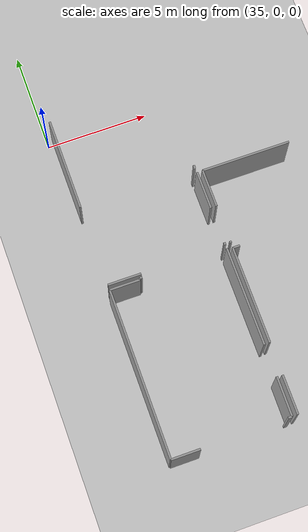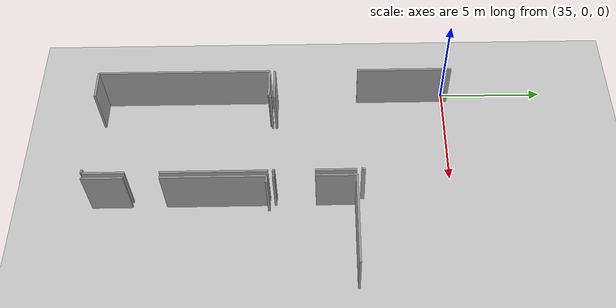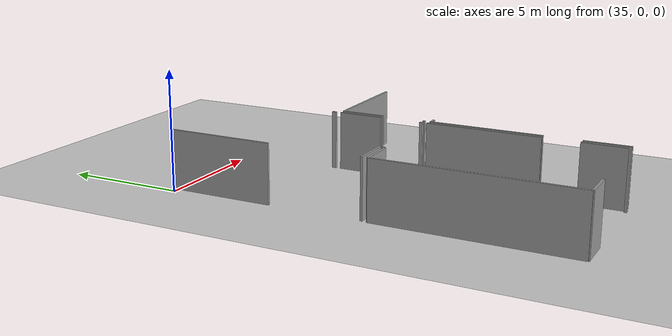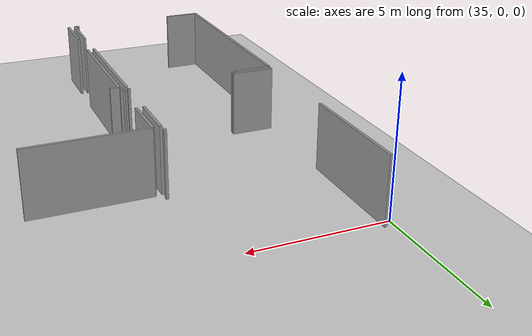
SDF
<sdf version="1.6">
 <world name="default">
  <model name="ground_plane">
   <static>1</static>
   <link name="link">
    <collision name="collision">
     <geometry><plane><normal>0 0 1</normal><size>100 100</size></plane></geometry>
     <surface><friction><ode><mu>100</mu><mu2>50</mu2></ode></friction></surface>
    </collision>
    <visual name="visual">
     <cast_shadows>0</cast_shadows>
     <geometry><plane><normal>0 0 1</normal><size>100 100</size></plane></geometry>
     <material>
      <script><uri>file://media/materials/scripts/gazebo.material</uri><name>Gazebo/Grey</name></script>
     </material>
    </visual>
   </link>
  </model>
  <model name="50041170">
   <static>1</static>
   <link name="Wall_206">
    <collision name="Wall_206_Collision">
     <geometry><box><size>4.54406397766 0.1 2.5</size></box></geometry>
     <pose>2.27203198883 0 1.25 0 0 0</pose>
    </collision>
    <visual name="Wall_206_Visual">
     <pose>2.27203198883 0 1.25 0 0 0</pose>
     <geometry><box><size>4.54406397766 0.1 2.5</size></box></geometry>
     <material>
      <script><uri>file://media/materials/scripts/gazebo.material</uri><name>Gazebo/Grey</name></script>
      <ambient>1 1 1 1</ambient>
     </material>
    </visual>
    <pose>101.764209324 -31.2792358224 0 0 0 1.57079632679</pose>
   </link>
   <link name="Wall_218">
    <collision name="Wall_218_Collision">
     <geometry><box><size>0.18547342505 0.1 2.5</size></box></geometry>
     <pose>0.0927367125248 0 1.25 0 0 0</pose>
    </collision>
    <visual name="Wall_218_Visual">
     <pose>0.0927367125248 0 1.25 0 0 0</pose>
     <geometry><box><size>0.18547342505 0.1 2.5</size></box></geometry>
     <material>
      <script><uri>file://media/materials/scripts/gazebo.material</uri><name>Gazebo/Grey</name></script>
      <ambient>1 1 1 1</ambient>
     </material>
    </visual>
    <pose>107.468249183 -31.094665355 0 0 0 -1.66951156089</pose>
   </link>
   <link name="Wall_226">
    <collision name="Wall_226_Collision">
     <geometry><box><size>1.61086604678 0.1 2.5</size></box></geometry>
     <pose>0.805433023389 0 1.25 0 0 0</pose>
    </collision>
    <visual name="Wall_226_Visual">
     <pose>0.805433023389 0 1.25 0 0 0</pose>
     <geometry><box><size>1.61086604678 0.1 2.5</size></box></geometry>
     <material>
      <script><uri>file://media/materials/scripts/gazebo.material</uri><name>Gazebo/Grey</name></script>
      <ambient>1 1 1 1</ambient>
     </material>
    </visual>
    <pose>103.358319317 -35.2623528292 0 0 0 3.14159265359</pose>
   </link>
   <link name="Wall_229">
    <collision name="Wall_229_Collision">
     <geometry><box><size>1.87388530989 0.1 2.5</size></box></geometry>
     <pose>0.936942654946 0 1.25 0 0 0</pose>
    </collision>
    <visual name="Wall_229_Visual">
     <pose>0.936942654946 0 1.25 0 0 0</pose>
     <geometry><box><size>1.87388530989 0.1 2.5</size></box></geometry>
     <material>
      <script><uri>file://media/materials/scripts/gazebo.material</uri><name>Gazebo/Grey</name></script>
      <ambient>1 1 1 1</ambient>
     </material>
    </visual>
    <pose>107.489828949 -31.4759925106 0 0 0 -1.57079632679</pose>
   </link>
   <link name="Wall_230">
    <collision name="Wall_230_Collision">
     <geometry><box><size>0.123066481893 0.1 2.5</size></box></geometry>
     <pose>0.0615332409467 0 1.25 0 0 0</pose>
    </collision>
    <visual name="Wall_230_Visual">
     <pose>0.0615332409467 0 1.25 0 0 0</pose>
     <geometry><box><size>0.123066481893 0.1 2.5</size></box></geometry>
     <material>
      <script><uri>file://media/materials/scripts/gazebo.material</uri><name>Gazebo/Grey</name></script>
      <ambient>1 1 1 1</ambient>
     </material>
    </visual>
    <pose>107.489828949 -35.1403636825 0 0 0 -1.70321153573</pose>
   </link>
   <link name="Wall_231">
    <collision name="Wall_231_Collision">
     <geometry><box><size>0.182412490876 0.1 2.5</size></box></geometry>
     <pose>0.0912062454381 0 1.25 0 0 0</pose>
    </collision>
    <visual name="Wall_231_Visual">
     <pose>0.0912062454381 0 1.25 0 0 0</pose>
     <geometry><box><size>0.182412490876 0.1 2.5</size></box></geometry>
     <material>
      <script><uri>file://media/materials/scripts/gazebo.material</uri><name>Gazebo/Grey</name></script>
      <ambient>1 1 1 1</ambient>
     </material>
    </visual>
    <pose>107.483228079 -43.7282218908 0 0 0 3.14159265359</pose>
   </link>
   <link name="Wall_232">
    <collision name="Wall_232_Collision">
     <geometry><box><size>1.40141537876 0.1 2.5</size></box></geometry>
     <pose>0.700707689378 0 1.25 0 0 0</pose>
    </collision>
    <visual name="Wall_232_Visual">
     <pose>0.700707689378 0 1.25 0 0 0</pose>
     <geometry><box><size>1.40141537876 0.1 2.5</size></box></geometry>
     <material>
      <script><uri>file://media/materials/scripts/gazebo.material</uri><name>Gazebo/Grey</name></script>
      <ambient>1 1 1 1</ambient>
     </material>
    </visual>
    <pose>103.15432706 -43.7282218908 0 0 0 3.14159265359</pose>
   </link>
   <link name="Wall_233">
    <collision name="Wall_233_Collision">
     <geometry><box><size>8.21262416299 0.1 2.5</size></box></geometry>
     <pose>4.1063120815 0 1.25 0 0 0</pose>
    </collision>
    <visual name="Wall_233_Visual">
     <pose>4.1063120815 0 1.25 0 0 0</pose>
     <geometry><box><size>8.21262416299 0.1 2.5</size></box></geometry>
     <material>
      <script><uri>file://media/materials/scripts/gazebo.material</uri><name>Gazebo/Grey</name></script>
      <ambient>1 1 1 1</ambient>
     </material>
    </visual>
    <pose>101.752911682 -43.7282218908 0 0 0 1.57079632679</pose>
   </link>
   <link name="Wall_234">
    <collision name="Wall_234_Collision">
     <geometry><box><size>1.47427882327 0.1 2.5</size></box></geometry>
     <pose>0.737139411634 0 1.25 0 0 0</pose>
    </collision>
    <visual name="Wall_234_Visual">
     <pose>0.737139411634 0 1.25 0 0 0</pose>
     <geometry><box><size>1.47427882327 0.1 2.5</size></box></geometry>
     <material>
      <script><uri>file://media/materials/scripts/gazebo.material</uri><name>Gazebo/Grey</name></script>
      <ambient>1 1 1 1</ambient>
     </material>
    </visual>
    <pose>101.752911682 -35.5155977278 0 0 0 0.0</pose>
   </link>
   <link name="Wall_235">
    <collision name="Wall_235_Collision">
     <geometry><box><size>0.0726095649138 0.1 2.5</size></box></geometry>
     <pose>0.0363047824569 0 1.25 0 0 0</pose>
    </collision>
    <visual name="Wall_235_Visual">
     <pose>0.0363047824569 0 1.25 0 0 0</pose>
     <geometry><box><size>0.0726095649138 0.1 2.5</size></box></geometry>
     <material>
      <script><uri>file://media/materials/scripts/gazebo.material</uri><name>Gazebo/Grey</name></script>
      <ambient>1 1 1 1</ambient>
     </material>
    </visual>
    <pose>103.227190505 -35.5155977278 0 0 0 1.57079632679</pose>
   </link>
   <link name="Wall_236">
    <collision name="Wall_236_Collision">
     <geometry><box><size>0.119831170068 0.1 2.5</size></box></geometry>
     <pose>0.0599155850338 0 1.25 0 0 0</pose>
    </collision>
    <visual name="Wall_236_Visual">
     <pose>0.0599155850338 0 1.25 0 0 0</pose>
     <geometry><box><size>0.119831170068 0.1 2.5</size></box></geometry>
     <material>
      <script><uri>file://media/materials/scripts/gazebo.material</uri><name>Gazebo/Grey</name></script>
      <ambient>1 1 1 1</ambient>
     </material>
    </visual>
    <pose>103.227190505 -35.4429881629 0 0 0 0.0</pose>
   </link>
   <link name="Wall_237">
    <collision name="Wall_237_Collision">
     <geometry><box><size>4.8360255149 0.1 2.5</size></box></geometry>
     <pose>2.41801275745 0 1.25 0 0 0</pose>
    </collision>
    <visual name="Wall_237_Visual">
     <pose>2.41801275745 0 1.25 0 0 0</pose>
     <geometry><box><size>4.8360255149 0.1 2.5</size></box></geometry>
     <material>
      <script><uri>file://media/materials/scripts/gazebo.material</uri><name>Gazebo/Grey</name></script>
      <ambient>1 1 1 1</ambient>
     </material>
    </visual>
    <pose>107.498206975 -35.4429881629 0 0 0 -1.57079632679</pose>
   </link>
   <link name="Wall_238">
    <collision name="Wall_238_Collision">
     <geometry><box><size>1.91101043589 0.1 2.5</size></box></geometry>
     <pose>0.955505217946 0 1.25 0 0 0</pose>
    </collision>
    <visual name="Wall_238_Visual">
     <pose>0.955505217946 0 1.25 0 0 0</pose>
     <geometry><box><size>1.91101043589 0.1 2.5</size></box></geometry>
     <material>
      <script><uri>file://media/materials/scripts/gazebo.material</uri><name>Gazebo/Grey</name></script>
      <ambient>1 1 1 1</ambient>
     </material>
    </visual>
    <pose>107.498206975 -41.8172701596 0 0 0 -1.57863461452</pose>
   </link>
   <link name="Wall_239">
    <collision name="Wall_239_Collision">
     <geometry><box><size>0.100155501254 0.1 2.5</size></box></geometry>
     <pose>0.0500777506268 0 1.25 0 0 0</pose>
    </collision>
    <visual name="Wall_239_Visual">
     <pose>0.0500777506268 0 1.25 0 0 0</pose>
     <geometry><box><size>0.100155501254 0.1 2.5</size></box></geometry>
     <material>
      <script><uri>file://media/materials/scripts/gazebo.material</uri><name>Gazebo/Grey</name></script>
      <ambient>1 1 1 1</ambient>
     </material>
    </visual>
    <pose>107.765288312 -35.2568944178 0 0 0 1.57079632679</pose>
   </link>
   <link name="Wall_240">
    <collision name="Wall_240_Collision">
     <geometry><box><size>1.8620799086 0.1 2.5</size></box></geometry>
     <pose>0.931039954302 0 1.25 0 0 0</pose>
    </collision>
    <visual name="Wall_240_Visual">
     <pose>0.931039954302 0 1.25 0 0 0</pose>
     <geometry><box><size>1.8620799086 0.1 2.5</size></box></geometry>
     <material>
      <script><uri>file://media/materials/scripts/gazebo.material</uri><name>Gazebo/Grey</name></script>
      <ambient>1 1 1 1</ambient>
     </material>
    </visual>
    <pose>107.765288312 -33.3426422519 0 0 0 1.57079632679</pose>
   </link>
   <link name="Wall_241">
    <collision name="Wall_241_Collision">
     <geometry><box><size>4.34502237314 0.1 2.5</size></box></geometry>
     <pose>2.17251118657 0 1.25 0 0 0</pose>
    </collision>
    <visual name="Wall_241_Visual">
     <pose>2.17251118657 0 1.25 0 0 0</pose>
     <geometry><box><size>4.34502237314 0.1 2.5</size></box></geometry>
     <material>
      <script><uri>file://media/materials/scripts/gazebo.material</uri><name>Gazebo/Grey</name></script>
      <ambient>1 1 1 1</ambient>
     </material>
    </visual>
    <pose>107.765288312 -31.4805623433 0 0 0 0.0</pose>
   </link>
   <link name="Wall_249">
    <collision name="Wall_249_Collision">
     <geometry><box><size>1.88886420615 0.1 2.5</size></box></geometry>
     <pose>0.944432103075 0 1.25 0 0 0</pose>
    </collision>
    <visual name="Wall_249_Visual">
     <pose>0.944432103075 0 1.25 0 0 0</pose>
     <geometry><box><size>1.88886420615 0.1 2.5</size></box></geometry>
     <material>
      <script><uri>file://media/materials/scripts/gazebo.material</uri><name>Gazebo/Grey</name></script>
      <ambient>1 1 1 1</ambient>
     </material>
    </visual>
    <pose>107.761987877 -43.7282218908 0 0 0 1.57079632679</pose>
   </link>
   <link name="Wall_250">
    <collision name="Wall_250_Collision">
     <geometry><box><size>4.74742153534 0.1 2.5</size></box></geometry>
     <pose>2.37371076767 0 1.25 0 0 0</pose>
    </collision>
    <visual name="Wall_250_Visual">
     <pose>2.37371076767 0 1.25 0 0 0</pose>
     <geometry><box><size>4.74742153534 0.1 2.5</size></box></geometry>
     <material>
      <script><uri>file://media/materials/scripts/gazebo.material</uri><name>Gazebo/Grey</name></script>
      <ambient>1 1 1 1</ambient>
     </material>
    </visual>
    <pose>107.761987877 -40.2598457681 0 0 0 1.57079632679</pose>
   </link>
   <link name="Wall_251">
    <collision name="Wall_251_Collision">
     <geometry><box><size>0.34603789153 0.1 2.5</size></box></geometry>
     <pose>0.173018945765 0 1.25 0 0 0</pose>
    </collision>
    <visual name="Wall_251_Visual">
     <pose>0.173018945765 0 1.25 0 0 0</pose>
     <geometry><box><size>0.34603789153 0.1 2.5</size></box></geometry>
     <material>
      <script><uri>file://media/materials/scripts/gazebo.material</uri><name>Gazebo/Grey</name></script>
      <ambient>1 1 1 1</ambient>
     </material>
    </visual>
    <pose>107.761987877 -35.5124242328 0 0 0 0.0</pose>
   </link>
   <pose>-66.45 26.9909095237 0 0 0 0</pose>
  </model>
 </world>
</sdf>
